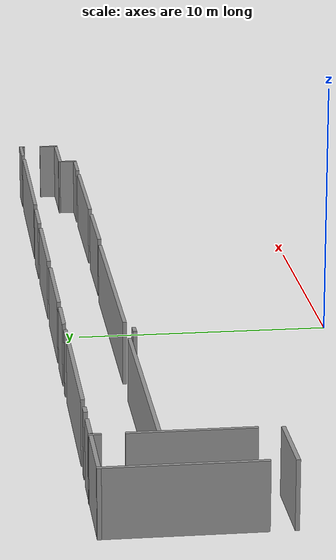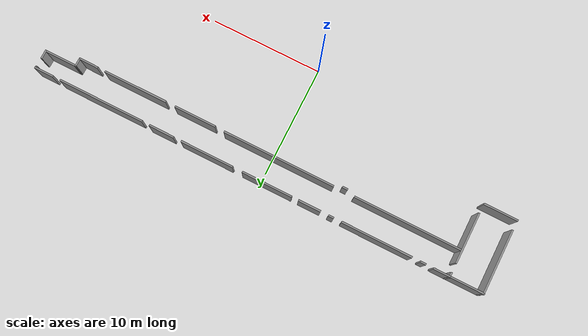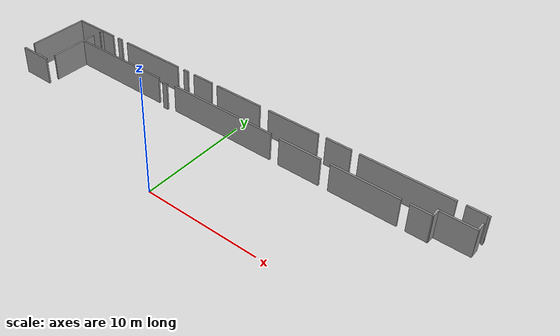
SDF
<?xml version='1.0'?>
<sdf version='1.7'>
  <model name='mundo_definitivo_piso1'>
    <pose>0.752962 -0.165006 0 0 -0 0</pose>
    <link name='Wall_16'>
      <collision name='Wall_16_Collision'>
        <geometry>
          <box>
            <size>5.68966 0.15 2.5</size>
          </box>
        </geometry>
        <pose>0 0 1.25 0 -0 0</pose>
      </collision>
      <visual name='Wall_16_Visual'>
        <pose>0 0 1.25 0 -0 0</pose>
        <geometry>
          <box>
            <size>5.68966 0.15 2.5</size>
          </box>
        </geometry>
        <material>
          <script>
            <uri>file://media/materials/scripts/gazebo.material</uri>
            <name>Gazebo/Grey</name>
          </script>
          <ambient>1 1 1 1</ambient>
        </material>
        <meta>
          <layer>0</layer>
        </meta>
      </visual>
      <pose>-20.6294 8.43018 0 0 -0 -1.5708</pose>
    </link>
    <link name='Wall_18'>
      <collision name='Wall_18_Collision'>
        <geometry>
          <box>
            <size>4.5 0.15 2.5</size>
          </box>
        </geometry>
        <pose>0 0 1.25 0 -0 0</pose>
      </collision>
      <visual name='Wall_18_Visual'>
        <pose>0 0 1.25 0 -0 0</pose>
        <geometry>
          <box>
            <size>4.5 0.15 2.5</size>
          </box>
        </geometry>
        <material>
          <script>
            <uri>file://media/materials/scripts/gazebo.material</uri>
            <name>Gazebo/Grey</name>
          </script>
          <ambient>1 1 1 1</ambient>
        </material>
        <meta>
          <layer>0</layer>
        </meta>
      </visual>
      <pose>-17.6889 7.78714 0 0 -0 -1.5708</pose>
    </link>
    <link name='Wall_20'>
      <collision name='Wall_20_Collision'>
        <geometry>
          <box>
            <size>3 0.15 2.5</size>
          </box>
        </geometry>
        <pose>0 0 1.25 0 -0 0</pose>
      </collision>
      <visual name='Wall_20_Visual'>
        <pose>0 0 1.25 0 -0 0</pose>
        <geometry>
          <box>
            <size>3 0.15 2.5</size>
          </box>
        </geometry>
        <material>
          <script>
            <uri>file://media/materials/scripts/gazebo.material</uri>
            <name>Gazebo/Grey</name>
          </script>
          <ambient>1 1 1 1</ambient>
        </material>
        <meta>
          <layer>0</layer>
        </meta>
      </visual>
      <pose>-19.2206 4.69238 0 0 -0 0</pose>
    </link>
    <link name='Wall_24'>
      <collision name='Wall_24_Collision'>
        <geometry>
          <box>
            <size>0.459773 0.15 2.5</size>
          </box>
        </geometry>
        <pose>0 0 1.25 0 -0 0</pose>
      </collision>
      <visual name='Wall_24_Visual'>
        <pose>0 0 1.25 0 -0 0</pose>
        <geometry>
          <box>
            <size>0.459773 0.15 2.5</size>
          </box>
        </geometry>
        <material>
          <script>
            <uri>file://media/materials/scripts/gazebo.material</uri>
            <name>Gazebo/Grey</name>
          </script>
          <ambient>1 1 1 1</ambient>
        </material>
        <meta>
          <layer>0</layer>
        </meta>
      </visual>
      <pose>-17.6875 11.0652 0 0 -0 -1.5708</pose>
    </link>
    <link name='Wall_26'>
      <collision name='Wall_26_Collision'>
        <geometry>
          <box>
            <size>3.11204 0.15 2.5</size>
          </box>
        </geometry>
        <pose>0 0 1.25 0 -0 0</pose>
      </collision>
      <visual name='Wall_26_Visual'>
        <pose>0 0 1.25 0 -0 0</pose>
        <geometry>
          <box>
            <size>3.11204 0.15 2.5</size>
          </box>
        </geometry>
        <material>
          <script>
            <uri>file://media/materials/scripts/gazebo.material</uri>
            <name>Gazebo/Grey</name>
          </script>
          <ambient>1 1 1 1</ambient>
        </material>
        <meta>
          <layer>0</layer>
        </meta>
      </visual>
      <pose>-19.1685 11.2 0 0 -0 0</pose>
    </link>
    <link name='Wall_29'>
      <collision name='Wall_29_Collision'>
        <geometry>
          <box>
            <size>1.5 0.15 2.5</size>
          </box>
        </geometry>
        <pose>0 0 1.25 0 -0 0</pose>
      </collision>
      <visual name='Wall_29_Visual'>
        <pose>0 0 1.25 0 -0 0</pose>
        <geometry>
          <box>
            <size>1.5 0.15 2.5</size>
          </box>
        </geometry>
        <material>
          <script>
            <uri>file://media/materials/scripts/gazebo.material</uri>
            <name>Gazebo/Grey</name>
          </script>
          <ambient>1 1 1 1</ambient>
        </material>
        <meta>
          <layer>0</layer>
        </meta>
      </visual>
      <pose>-17.0125 11.2 0 0 -0 0</pose>
    </link>
    <link name='Wall_31'>
      <collision name='Wall_31_Collision'>
        <geometry>
          <box>
            <size>0.5 0.15 2.5</size>
          </box>
        </geometry>
        <pose>0 0 1.25 0 -0 0</pose>
      </collision>
      <visual name='Wall_31_Visual'>
        <pose>0 0 1.25 0 -0 0</pose>
        <geometry>
          <box>
            <size>0.5 0.15 2.5</size>
          </box>
        </geometry>
        <material>
          <script>
            <uri>file://media/materials/scripts/gazebo.material</uri>
            <name>Gazebo/Grey</name>
          </script>
          <ambient>1 1 1 1</ambient>
        </material>
        <meta>
          <layer>0</layer>
        </meta>
      </visual>
      <pose>-15.3618 11.1888 0 0 -0 0</pose>
    </link>
    <link name='Wall_33'>
      <collision name='Wall_33_Collision'>
        <geometry>
          <box>
            <size>6.25 0.15 2.5</size>
          </box>
        </geometry>
        <pose>0 0 1.25 0 -0 0</pose>
      </collision>
      <visual name='Wall_33_Visual'>
        <pose>0 0 1.25 0 -0 0</pose>
        <geometry>
          <box>
            <size>6.25 0.15 2.5</size>
          </box>
        </geometry>
        <material>
          <script>
            <uri>file://media/materials/scripts/gazebo.material</uri>
            <name>Gazebo/Grey</name>
          </script>
          <ambient>1 1 1 1</ambient>
        </material>
        <meta>
          <layer>0</layer>
        </meta>
      </visual>
      <pose>-11.275 11.1839 0 0 -0 0</pose>
    </link>
    <link name='Wall_35'>
      <collision name='Wall_35_Collision'>
        <geometry>
          <box>
            <size>0.5 0.15 2.5</size>
          </box>
        </geometry>
        <pose>0 0 1.25 0 -0 0</pose>
      </collision>
      <visual name='Wall_35_Visual'>
        <pose>0 0 1.25 0 -0 0</pose>
        <geometry>
          <box>
            <size>0.5 0.15 2.5</size>
          </box>
        </geometry>
        <material>
          <script>
            <uri>file://media/materials/scripts/gazebo.material</uri>
            <name>Gazebo/Grey</name>
          </script>
          <ambient>1 1 1 1</ambient>
        </material>
        <meta>
          <layer>0</layer>
        </meta>
      </visual>
      <pose>-7.21577 11.1936 0 0 -0 0</pose>
    </link>
    <link name='Wall_37'>
      <collision name='Wall_37_Collision'>
        <geometry>
          <box>
            <size>2 0.15 2.5</size>
          </box>
        </geometry>
        <pose>0 0 1.25 0 -0 0</pose>
      </collision>
      <visual name='Wall_37_Visual'>
        <pose>0 0 1.25 0 -0 0</pose>
        <geometry>
          <box>
            <size>2 0.15 2.5</size>
          </box>
        </geometry>
        <material>
          <script>
            <uri>file://media/materials/scripts/gazebo.material</uri>
            <name>Gazebo/Grey</name>
          </script>
          <ambient>1 1 1 1</ambient>
        </material>
        <meta>
          <layer>0</layer>
        </meta>
      </visual>
      <pose>-5.28271 11.1912 0 0 -0 0</pose>
    </link>
    <link name='Wall_39'>
      <collision name='Wall_39_Collision'>
        <geometry>
          <box>
            <size>4.5 0.15 2.5</size>
          </box>
        </geometry>
        <pose>0 0 1.25 0 -0 0</pose>
      </collision>
      <visual name='Wall_39_Visual'>
        <pose>0 0 1.25 0 -0 0</pose>
        <geometry>
          <box>
            <size>4.5 0.15 2.5</size>
          </box>
        </geometry>
        <material>
          <script>
            <uri>file://media/materials/scripts/gazebo.material</uri>
            <name>Gazebo/Grey</name>
          </script>
          <ambient>1 1 1 1</ambient>
        </material>
        <meta>
          <layer>0</layer>
        </meta>
      </visual>
      <pose>-1.43745 11.1862 0 0 -0 0</pose>
    </link>
    <link name='Wall_41'>
      <collision name='Wall_41_Collision'>
        <geometry>
          <box>
            <size>4.75 0.15 2.5</size>
          </box>
        </geometry>
        <pose>0 0 1.25 0 -0 0</pose>
      </collision>
      <visual name='Wall_41_Visual'>
        <pose>0 0 1.25 0 -0 0</pose>
        <geometry>
          <box>
            <size>4.75 0.15 2.5</size>
          </box>
        </geometry>
        <material>
          <script>
            <uri>file://media/materials/scripts/gazebo.material</uri>
            <name>Gazebo/Grey</name>
          </script>
          <ambient>1 1 1 1</ambient>
        </material>
        <meta>
          <layer>0</layer>
        </meta>
      </visual>
      <pose>4.05209 11.1862 0 0 -0 0</pose>
    </link>
    <link name='Wall_43'>
      <collision name='Wall_43_Collision'>
        <geometry>
          <box>
            <size>2.25 0.15 2.5</size>
          </box>
        </geometry>
        <pose>0 0 1.25 0 -0 0</pose>
      </collision>
      <visual name='Wall_43_Visual'>
        <pose>0 0 1.25 0 -0 0</pose>
        <geometry>
          <box>
            <size>2.25 0.15 2.5</size>
          </box>
        </geometry>
        <material>
          <script>
            <uri>file://media/materials/scripts/gazebo.material</uri>
            <name>Gazebo/Grey</name>
          </script>
          <ambient>1 1 1 1</ambient>
        </material>
        <meta>
          <layer>0</layer>
        </meta>
      </visual>
      <pose>8.2412 11.1912 0 0 -0 0</pose>
    </link>
    <link name='Wall_45'>
      <collision name='Wall_45_Collision'>
        <geometry>
          <box>
            <size>7.75 0.15 2.5</size>
          </box>
        </geometry>
        <pose>0 0 1.25 0 -0 0</pose>
      </collision>
      <visual name='Wall_45_Visual'>
        <pose>0 0 1.25 0 -0 0</pose>
        <geometry>
          <box>
            <size>7.75 0.15 2.5</size>
          </box>
        </geometry>
        <material>
          <script>
            <uri>file://media/materials/scripts/gazebo.material</uri>
            <name>Gazebo/Grey</name>
          </script>
          <ambient>1 1 1 1</ambient>
        </material>
        <meta>
          <layer>0</layer>
        </meta>
      </visual>
      <pose>13.9171 11.1713 0 0 -0 0</pose>
    </link>
    <link name='Wall_47'>
      <collision name='Wall_47_Collision'>
        <geometry>
          <box>
            <size>1.75 0.15 2.5</size>
          </box>
        </geometry>
        <pose>0 0 1.25 0 -0 0</pose>
      </collision>
      <visual name='Wall_47_Visual'>
        <pose>0 0 1.25 0 -0 0</pose>
        <geometry>
          <box>
            <size>1.75 0.15 2.5</size>
          </box>
        </geometry>
        <material>
          <script>
            <uri>file://media/materials/scripts/gazebo.material</uri>
            <name>Gazebo/Grey</name>
          </script>
          <ambient>1 1 1 1</ambient>
        </material>
        <meta>
          <layer>0</layer>
        </meta>
      </visual>
      <pose>19.3098 11.1778 0 0 -0 0</pose>
    </link>
    <link name='Wall_48'>
      <collision name='Wall_48_Collision'>
        <geometry>
          <box>
            <size>0.25 0.15 2.5</size>
          </box>
        </geometry>
        <pose>0 0 1.25 0 -0 0</pose>
      </collision>
      <visual name='Wall_48_Visual'>
        <pose>0 0 1.25 0 -0 0</pose>
        <geometry>
          <box>
            <size>0.25 0.15 2.5</size>
          </box>
        </geometry>
        <material>
          <script>
            <uri>file://media/materials/scripts/gazebo.material</uri>
            <name>Gazebo/Grey</name>
          </script>
          <ambient>1 1 1 1</ambient>
        </material>
        <meta>
          <layer>0</layer>
        </meta>
      </visual>
      <pose>20.1098 11.1278 0 0 -0 -1.5708</pose>
    </link>
    <link name='Wall_59'>
      <collision name='Wall_59_Collision'>
        <geometry>
          <box>
            <size>0.828261 0.15 2.5</size>
          </box>
        </geometry>
        <pose>0 0 1.25 0 -0 0</pose>
      </collision>
      <visual name='Wall_59_Visual'>
        <pose>0 0 1.25 0 -0 0</pose>
        <geometry>
          <box>
            <size>0.828261 0.15 2.5</size>
          </box>
        </geometry>
        <material>
          <script>
            <uri>file://media/materials/scripts/gazebo.material</uri>
            <name>Gazebo/Grey</name>
          </script>
          <ambient>1 1 1 1</ambient>
        </material>
        <meta>
          <layer>0</layer>
        </meta>
      </visual>
      <pose>20.075 9.86476 0 0 -0 -1.5708</pose>
    </link>
    <link name='Wall_65'>
      <collision name='Wall_65_Collision'>
        <geometry>
          <box>
            <size>1.76748 0.15 2.5</size>
          </box>
        </geometry>
        <pose>0 0 1.25 0 -0 0</pose>
      </collision>
      <visual name='Wall_65_Visual'>
        <pose>0 0 1.25 0 -0 0</pose>
        <geometry>
          <box>
            <size>1.76748 0.15 2.5</size>
          </box>
        </geometry>
        <material>
          <script>
            <uri>file://media/materials/scripts/gazebo.material</uri>
            <name>Gazebo/Grey</name>
          </script>
          <ambient>1 1 1 1</ambient>
        </material>
        <meta>
          <layer>0</layer>
        </meta>
      </visual>
      <pose>16.3989 8.83432 0 0 -0 3.13622</pose>
    </link>
    <link name='Wall_68'>
      <collision name='Wall_68_Collision'>
        <geometry>
          <box>
            <size>3 0.15 2.5</size>
          </box>
        </geometry>
        <pose>0 0 1.25 0 -0 0</pose>
      </collision>
      <visual name='Wall_68_Visual'>
        <pose>0 0 1.25 0 -0 0</pose>
        <geometry>
          <box>
            <size>3 0.15 2.5</size>
          </box>
        </geometry>
        <material>
          <script>
            <uri>file://media/materials/scripts/gazebo.material</uri>
            <name>Gazebo/Grey</name>
          </script>
          <ambient>1 1 1 1</ambient>
        </material>
        <meta>
          <layer>0</layer>
        </meta>
      </visual>
      <pose>18.65 9.51693 0 0 -0 3.14159</pose>
    </link>
    <link name='Wall_69'>
      <collision name='Wall_69_Collision'>
        <geometry>
          <box>
            <size>0.84587 0.15 2.5</size>
          </box>
        </geometry>
        <pose>0 0 1.25 0 -0 0</pose>
      </collision>
      <visual name='Wall_69_Visual'>
        <pose>0 0 1.25 0 -0 0</pose>
        <geometry>
          <box>
            <size>0.84587 0.15 2.5</size>
          </box>
        </geometry>
        <material>
          <script>
            <uri>file://media/materials/scripts/gazebo.material</uri>
            <name>Gazebo/Grey</name>
          </script>
          <ambient>1 1 1 1</ambient>
        </material>
        <meta>
          <layer>0</layer>
        </meta>
      </visual>
      <pose>17.2163 9.1778 0 0 -0 -1.59579</pose>
    </link>
    <link name='Wall_71'>
      <collision name='Wall_71_Collision'>
        <geometry>
          <box>
            <size>5.75 0.15 2.5</size>
          </box>
        </geometry>
        <pose>0 0 1.25 0 -0 0</pose>
      </collision>
      <visual name='Wall_71_Visual'>
        <pose>0 0 1.25 0 -0 0</pose>
        <geometry>
          <box>
            <size>5.75 0.15 2.5</size>
          </box>
        </geometry>
        <material>
          <script>
            <uri>file://media/materials/scripts/gazebo.material</uri>
            <name>Gazebo/Grey</name>
          </script>
          <ambient>1 1 1 1</ambient>
        </material>
        <meta>
          <layer>0</layer>
        </meta>
      </visual>
      <pose>11.9619 8.83867 0 0 -0 3.14159</pose>
    </link>
    <link name='Wall_73'>
      <collision name='Wall_73_Collision'>
        <geometry>
          <box>
            <size>3.75 0.15 2.5</size>
          </box>
        </geometry>
        <pose>0 0 1.25 0 -0 0</pose>
      </collision>
      <visual name='Wall_73_Visual'>
        <pose>0 0 1.25 0 -0 0</pose>
        <geometry>
          <box>
            <size>3.75 0.15 2.5</size>
          </box>
        </geometry>
        <material>
          <script>
            <uri>file://media/materials/scripts/gazebo.material</uri>
            <name>Gazebo/Grey</name>
          </script>
          <ambient>1 1 1 1</ambient>
        </material>
        <meta>
          <layer>0</layer>
        </meta>
      </visual>
      <pose>6.37063 8.84737 0 0 -0 3.14159</pose>
    </link>
    <link name='Wall_75'>
      <collision name='Wall_75_Collision'>
        <geometry>
          <box>
            <size>10 0.15 2.5</size>
          </box>
        </geometry>
        <pose>0 0 1.25 0 -0 0</pose>
      </collision>
      <visual name='Wall_75_Visual'>
        <pose>0 0 1.25 0 -0 0</pose>
        <geometry>
          <box>
            <size>10 0.15 2.5</size>
          </box>
        </geometry>
        <material>
          <script>
            <uri>file://media/materials/scripts/gazebo.material</uri>
            <name>Gazebo/Grey</name>
          </script>
          <ambient>1 1 1 1</ambient>
        </material>
        <meta>
          <layer>0</layer>
        </meta>
      </visual>
      <pose>-1.33077 8.89495 0 0 -0 3.14159</pose>
    </link>
    <link name='Wall_77'>
      <collision name='Wall_77_Collision'>
        <geometry>
          <box>
            <size>0.5 0.15 2.5</size>
          </box>
        </geometry>
        <pose>0 0 1.25 0 -0 0</pose>
      </collision>
      <visual name='Wall_77_Visual'>
        <pose>0 0 1.25 0 -0 0</pose>
        <geometry>
          <box>
            <size>0.5 0.15 2.5</size>
          </box>
        </geometry>
        <material>
          <script>
            <uri>file://media/materials/scripts/gazebo.material</uri>
            <name>Gazebo/Grey</name>
          </script>
          <ambient>1 1 1 1</ambient>
        </material>
        <meta>
          <layer>0</layer>
        </meta>
      </visual>
      <pose>-7.19724 8.61511 0 0 -0 3.14159</pose>
    </link>
    <link name='Wall_79'>
      <collision name='Wall_79_Collision'>
        <geometry>
          <box>
            <size>9.5 0.15 2.5</size>
          </box>
        </geometry>
        <pose>0 0 1.25 0 -0 0</pose>
      </collision>
      <visual name='Wall_79_Visual'>
        <pose>0 0 1.25 0 -0 0</pose>
        <geometry>
          <box>
            <size>9.5 0.15 2.5</size>
          </box>
        </geometry>
        <material>
          <script>
            <uri>file://media/materials/scripts/gazebo.material</uri>
            <name>Gazebo/Grey</name>
          </script>
          <ambient>1 1 1 1</ambient>
        </material>
        <meta>
          <layer>0</layer>
        </meta>
      </visual>
      <pose>-12.9215 8.89495 0 0 -0 3.14159</pose>
    </link>
    <static>1</static>
  </model>
</sdf>
